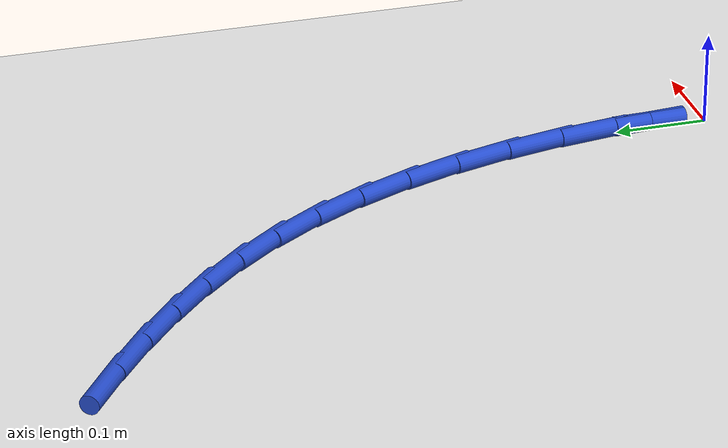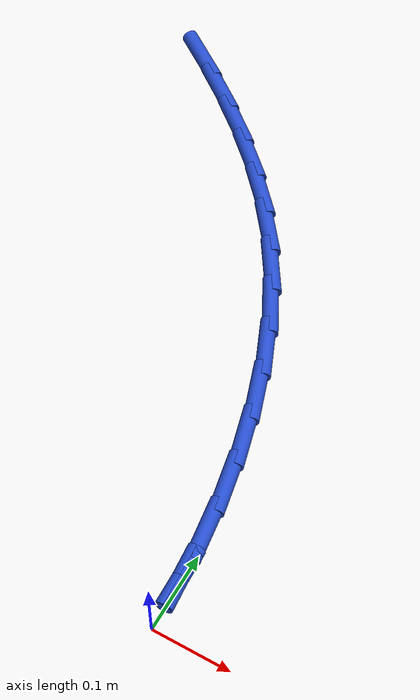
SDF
<sdf version="1.6">
 <world name="default">
  <model name="ground_plane">
   <static>1</static>
   <link name="link">
    <collision name="collision">
     <geometry><plane><normal>0 0 1</normal><size>100 100</size></plane></geometry>
     <surface><friction><ode><mu>100</mu><mu2>50</mu2></ode></friction></surface>
    </collision>
    <visual name="visual">
     <cast_shadows>0</cast_shadows>
     <geometry><plane><normal>0 0 1</normal><size>100 100</size></plane></geometry>
     <material>
      <script><uri>file://media/materials/scripts/gazebo.material</uri><name>Gazebo/WhiteGlow</name></script>
     </material>
    </visual>
   </link>
  </model>
  <model name="line">
   <link name="link_1">
    <pose>-0.00181868610293886 0.0642333273870383 0.01 0 1.57 -1.4853449276973656</pose>
    <collision name="collision">
     <geometry><cylinder><radius>0.01</radius><length>0.08</length></cylinder></geometry>
    </collision>
    <visual name="visual">
     <material>
      <script><name>Gazebo/Blue</name><uri>file://media/materials/scripts/gazebo.material</uri></script>
     </material>
     <geometry><cylinder><radius>0.01</radius><length>0.08</length></cylinder></geometry>
    </visual>
   </link>
   <link name="link_2">
    <pose>-0.007282297761225274 0.1280158624109047 0.01 0 1.57 -1.4263215847330741</pose>
    <collision name="collision">
     <geometry><cylinder><radius>0.01</radius><length>0.08</length></cylinder></geometry>
    </collision>
    <visual name="visual">
     <material>
      <script><name>Gazebo/Blue</name><uri>file://media/materials/scripts/gazebo.material</uri></script>
     </material>
     <geometry><cylinder><radius>0.01</radius><length>0.08</length></cylinder></geometry>
    </visual>
   </link>
   <link name="link_3">
    <pose>-0.016431158984165146 0.19089964238483673 0.01 0 1.57 -1.364556743749144</pose>
    <collision name="collision">
     <geometry><cylinder><radius>0.01</radius><length>0.08</length></cylinder></geometry>
    </collision>
    <visual name="visual">
     <material>
      <script><name>Gazebo/Blue</name><uri>file://media/materials/scripts/gazebo.material</uri></script>
     </material>
     <geometry><cylinder><radius>0.01</radius><length>0.08</length></cylinder></geometry>
    </visual>
   </link>
   <link name="link_4">
    <pose>-0.029305593781064378 0.2524367046220716 0.01 0 1.57 -1.2991468193184126</pose>
    <collision name="collision">
     <geometry><cylinder><radius>0.01</radius><length>0.08</length></cylinder></geometry>
    </collision>
    <visual name="visual">
     <material>
      <script><name>Gazebo/Blue</name><uri>file://media/materials/scripts/gazebo.material</uri></script>
     </material>
     <geometry><cylinder><radius>0.01</radius><length>0.08</length></cylinder></geometry>
    </visual>
   </link>
   <link name="link_5">
    <pose>-0.04594592616122888 0.31217908643584685 0.01 0 1.57 -1.2291468320331438</pose>
    <collision name="collision">
     <geometry><cylinder><radius>0.01</radius><length>0.08</length></cylinder></geometry>
    </collision>
    <visual name="visual">
     <material>
      <script><name>Gazebo/Blue</name><uri>file://media/materials/scripts/gazebo.material</uri></script>
     </material>
     <geometry><cylinder><radius>0.01</radius><length>0.08</length></cylinder></geometry>
    </visual>
   </link>
   <link name="link_6">
    <pose>-0.06639248013396457 0.3696788251393998 0.01 0 1.57 -1.1535858520577904</pose>
    <collision name="collision">
     <geometry><cylinder><radius>0.01</radius><length>0.08</length></cylinder></geometry>
    </collision>
    <visual name="visual">
     <material>
      <script><name>Gazebo/Blue</name><uri>file://media/materials/scripts/gazebo.material</uri></script>
     </material>
     <geometry><cylinder><radius>0.01</radius><length>0.08</length></cylinder></geometry>
    </visual>
   </link>
   <link name="link_7">
    <pose>-0.09068557970857735 0.4244879580459679 0.01 0 1.57 -1.0715088974545268</pose>
    <collision name="collision">
     <geometry><cylinder><radius>0.01</radius><length>0.08</length></cylinder></geometry>
    </collision>
    <visual name="visual">
     <material>
      <script><name>Gazebo/Blue</name><uri>file://media/materials/scripts/gazebo.material</uri></script>
     </material>
     <geometry><cylinder><radius>0.01</radius><length>0.08</length></cylinder></geometry>
    </visual>
   </link>
   <link name="link_8">
    <pose>-0.1188655488943731 0.47615852246878854 0.01 0 1.57 -0.982383821976886</pose>
    <collision name="collision">
     <geometry><cylinder><radius>0.01</radius><length>0.08</length></cylinder></geometry>
    </collision>
    <visual name="visual">
     <material>
      <script><name>Gazebo/Blue</name><uri>file://media/materials/scripts/gazebo.material</uri></script>
     </material>
     <geometry><cylinder><radius>0.01</radius><length>0.08</length></cylinder></geometry>
    </visual>
   </link>
   <link name="link_9">
    <pose>-0.1509643211104516 0.5242639457518234 0.01 0 1.57 -0.8932032914359103</pose>
    <collision name="collision">
     <geometry><cylinder><radius>0.01</radius><length>0.08</length></cylinder></geometry>
    </collision>
    <visual name="visual">
     <material>
      <script><name>Gazebo/Blue</name><uri>file://media/materials/scripts/gazebo.material</uri></script>
     </material>
     <geometry><cylinder><radius>0.01</radius><length>0.08</length></cylinder></geometry>
    </visual>
   </link>
   <link name="link_10">
    <pose>-0.1868330167001403 0.5688385998390152 0.01 0 1.57 -0.8126948242723915</pose>
    <collision name="collision">
     <geometry><cylinder><radius>0.01</radius><length>0.08</length></cylinder></geometry>
    </collision>
    <visual name="visual">
     <material>
      <script><name>Gazebo/Blue</name><uri>file://media/materials/scripts/gazebo.material</uri></script>
     </material>
     <geometry><cylinder><radius>0.01</radius><length>0.08</length></cylinder></geometry>
    </visual>
   </link>
   <link name="link_11">
    <pose>-0.22614845649809226 0.6103611963160016 0.01 0 1.57 -0.7428607919073072</pose>
    <collision name="collision">
     <geometry><cylinder><radius>0.01</radius><length>0.08</length></cylinder></geometry>
    </collision>
    <visual name="visual">
     <material>
      <script><name>Gazebo/Blue</name><uri>file://media/materials/scripts/gazebo.material</uri></script>
     </material>
     <geometry><cylinder><radius>0.01</radius><length>0.08</length></cylinder></geometry>
    </visual>
   </link>
   <link name="link_12">
    <pose>-0.2685803740118962 0.6493285144060902 0.01 0 1.57 -0.6845648837211386</pose>
    <collision name="collision">
     <geometry><cylinder><radius>0.01</radius><length>0.08</length></cylinder></geometry>
    </collision>
    <visual name="visual">
     <material>
      <script><name>Gazebo/Blue</name><uri>file://media/materials/scripts/gazebo.material</uri></script>
     </material>
     <geometry><cylinder><radius>0.01</radius><length>0.08</length></cylinder></geometry>
    </visual>
   </link>
   <link name="link_13">
    <pose>-0.3137985027491401 0.6862373333325866 0.01 0 1.57 -0.6379952072808123</pose>
    <collision name="collision">
     <geometry><cylinder><radius>0.01</radius><length>0.08</length></cylinder></geometry>
    </collision>
    <visual name="visual">
     <material>
      <script><name>Gazebo/Blue</name><uri>file://media/materials/scripts/gazebo.material</uri></script>
     </material>
     <geometry><cylinder><radius>0.01</radius><length>0.08</length></cylinder></geometry>
    </visual>
   </link>
   <link name="link_14">
    <pose>-0.3614725762174128 0.7215844323187984 0.01 0 1.57 -0.6028983552364842</pose>
    <collision name="collision">
     <geometry><cylinder><radius>0.01</radius><length>0.08</length></cylinder></geometry>
    </collision>
    <visual name="visual">
     <material>
      <script><name>Gazebo/Blue</name><uri>file://media/materials/scripts/gazebo.material</uri></script>
     </material>
     <geometry><cylinder><radius>0.01</radius><length>0.08</length></cylinder></geometry>
    </visual>
   </link>
   <link name="link_121">
    <pose>-0.0018049763451490237 0.06423299393223317 0.01 0 1.57 -1.5427032648266978</pose>
    <collision name="collision">
     <geometry><cylinder><radius>0.01</radius><length>0.08</length></cylinder></geometry>
    </collision>
    <visual name="visual">
     <material>
      <script><name>Gazebo/Blue</name><uri>file://media/materials/scripts/gazebo.material</uri></script>
     </material>
     <geometry><cylinder><radius>0.01</radius><length>0.08</length></cylinder></geometry>
    </visual>
   </link>
  </model>
 </world>
</sdf>
